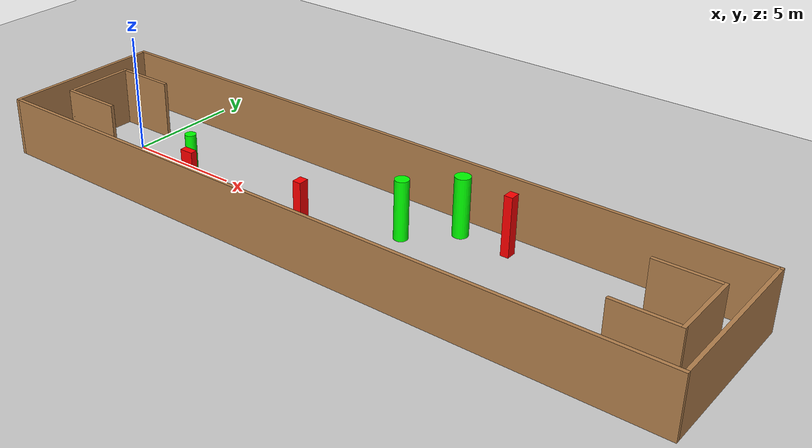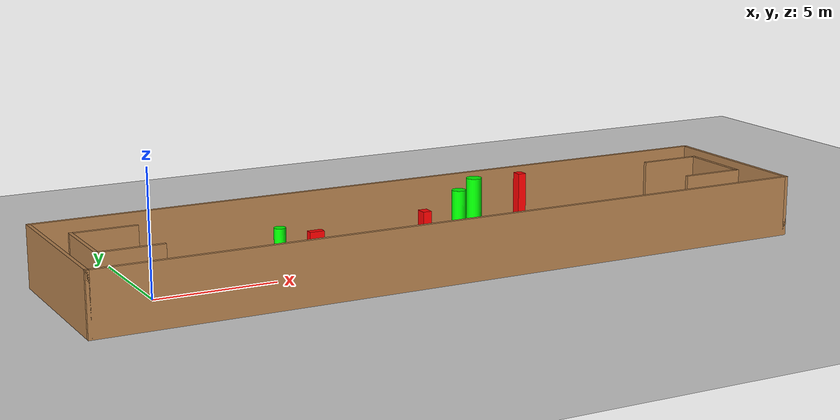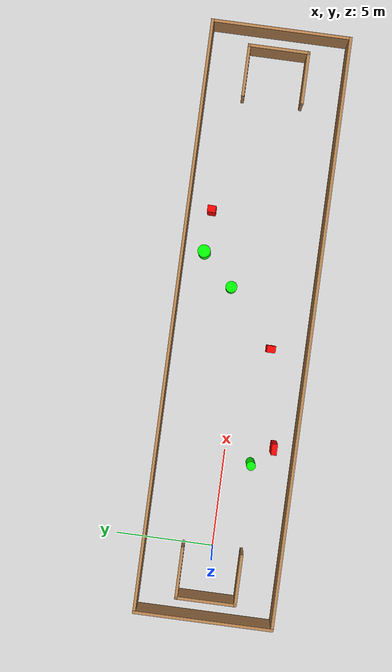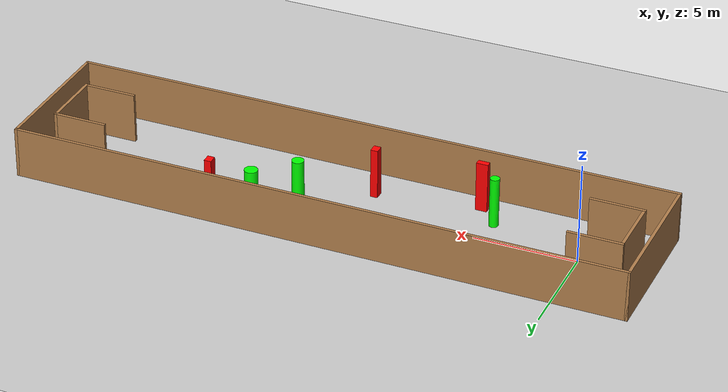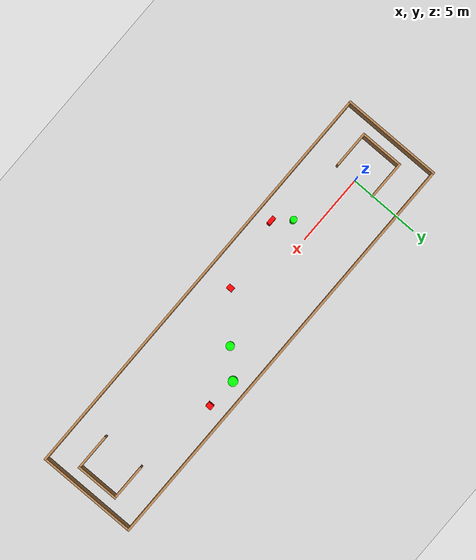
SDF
<sdf version="1.7">
 <world name="default">
  <light name="sun" type="directional">
   <pose>0 0 10 0 -0 0</pose>
   <diffuse>0.8 0.8 0.8 1</diffuse>
   <specular>0.2 0.2 0.2 1</specular>
   <attenuation>
    <range>1000</range>
    <constant>0.9</constant>
    <linear>0.01</linear>
    <quadratic>0.001</quadratic>
   </attenuation>
   <direction>-0.5 0.1 -0.9</direction>
   <spot><inner_angle>0</inner_angle><outer_angle>0</outer_angle><falloff>0</falloff></spot>
  </light>
  <model name="ground_plane">
   <static>1</static>
   <link name="link">
    <collision name="collision">
     <geometry><plane><normal>0 0 1</normal><size>100 100</size></plane></geometry>
     <surface>
      <contact><collide_bitmask>65535</collide_bitmask></contact>
      <friction><ode><mu>100</mu><mu2>50</mu2></ode></friction>
     </surface>
    </collision>
    <visual name="visual">
     <cast_shadows>0</cast_shadows>
     <geometry><plane><normal>0 0 1</normal><size>100 100</size></plane></geometry>
     <material>
      <script><uri>file://media/materials/scripts/gazebo.material</uri><name>Gazebo/Grey</name></script>
     </material>
    </visual>
   </link>
  </model>
  <gravity>0 0 -9.8</gravity>
  <magnetic_field>6e-06 2.3e-05 -4.2e-05</magnetic_field>
  <atmosphere type="adiabatic"/>
  <physics type="ode">
   <max_step_size>0.001</max_step_size>
   <real_time_factor>1</real_time_factor>
   <real_time_update_rate>1000</real_time_update_rate>
  </physics>
  <scene><ambient>0.4 0.4 0.4 1</ambient><background>0.7 0.7 0.7 1</background><shadows>1</shadows></scene>
  <spherical_coordinates>
   <surface_model>EARTH_WGS84</surface_model>
   <latitude_deg>0</latitude_deg>
   <longitude_deg>0</longitude_deg>
   <elevation>0</elevation>
   <heading_deg>0</heading_deg>
  </spherical_coordinates>
  <model name="my_base_walls">
   <link name="Wall_0">
    <collision name="Wall_0_Collision">
     <geometry><box><size>7.15 0.15 2.5</size></box></geometry>
     <pose>0 0 1.25 0 -0 0</pose>
    </collision>
    <visual name="Wall_0_Visual">
     <pose>0 0 1.25 0 -0 0</pose>
     <geometry><box><size>7.15 0.15 2.5</size></box></geometry>
     <material>
      <script><uri>file://media/materials/scripts/gazebo.material</uri><name>Gazebo/Wood</name></script>
      <ambient>1 1 1 1</ambient>
     </material>
     <meta><layer>0</layer></meta>
    </visual>
    <pose>-15 0 0 0 -0 1.5708</pose>
   </link>
   <link name="Wall_10">
    <collision name="Wall_10_Collision">
     <geometry><box><size>2.65 0.15 2.5</size></box></geometry>
     <pose>0 0 1.25 0 -0 0</pose>
    </collision>
    <visual name="Wall_10_Visual">
     <pose>0 0 1.25 0 -0 0</pose>
     <geometry><box><size>2.65 0.15 2.5</size></box></geometry>
     <material>
      <script><uri>file://media/materials/scripts/gazebo.material</uri><name>Gazebo/Wood</name></script>
      <ambient>1 1 1 1</ambient>
     </material>
     <meta><layer>0</layer></meta>
    </visual>
    <pose>-12.75 -1.5 0 0 -0 0</pose>
   </link>
   <link name="Wall_12">
    <collision name="Wall_12_Collision">
     <geometry><box><size>2.65 0.15 2.5</size></box></geometry>
     <pose>0 0 1.25 0 -0 0</pose>
    </collision>
    <visual name="Wall_12_Visual">
     <pose>0 0 1.25 0 -0 0</pose>
     <geometry><box><size>2.65 0.15 2.5</size></box></geometry>
     <material>
      <script><uri>file://media/materials/scripts/gazebo.material</uri><name>Gazebo/Wood</name></script>
      <ambient>1 1 1 1</ambient>
     </material>
     <meta><layer>0</layer></meta>
    </visual>
    <pose>-12.75 1.5 0 0 -0 0</pose>
   </link>
   <link name="Wall_14">
    <collision name="Wall_14_Collision">
     <geometry><box><size>3.15 0.15 2.5</size></box></geometry>
     <pose>0 0 1.25 0 -0 0</pose>
    </collision>
    <visual name="Wall_14_Visual">
     <pose>0 0 1.25 0 -0 0</pose>
     <geometry><box><size>3.15 0.15 2.5</size></box></geometry>
     <material>
      <script><uri>file://media/materials/scripts/gazebo.material</uri><name>Gazebo/Wood</name></script>
      <ambient>1 1 1 1</ambient>
     </material>
     <meta><layer>0</layer></meta>
    </visual>
    <pose>14 0 0 0 -0 -1.5708</pose>
   </link>
   <link name="Wall_15">
    <collision name="Wall_15_Collision">
     <geometry><box><size>2.65 0.15 2.5</size></box></geometry>
     <pose>0 0 1.25 0 -0 0</pose>
    </collision>
    <visual name="Wall_15_Visual">
     <pose>0 0 1.25 0 -0 0</pose>
     <geometry><box><size>2.65 0.15 2.5</size></box></geometry>
     <material>
      <script><uri>file://media/materials/scripts/gazebo.material</uri><name>Gazebo/Wood</name></script>
      <ambient>1 1 1 1</ambient>
     </material>
     <meta><layer>0</layer></meta>
    </visual>
    <pose>12.75 -1.5 0 0 -0 3.14159</pose>
   </link>
   <link name="Wall_17">
    <collision name="Wall_17_Collision">
     <geometry><box><size>2.65 0.15 2.5</size></box></geometry>
     <pose>0 0 1.25 0 -0 0</pose>
    </collision>
    <visual name="Wall_17_Visual">
     <pose>0 0 1.25 0 -0 0</pose>
     <geometry><box><size>2.65 0.15 2.5</size></box></geometry>
     <material>
      <script><uri>file://media/materials/scripts/gazebo.material</uri><name>Gazebo/Wood</name></script>
      <ambient>1 1 1 1</ambient>
     </material>
     <meta><layer>0</layer></meta>
    </visual>
    <pose>12.75 1.5 0 0 -0 3.14159</pose>
   </link>
   <link name="Wall_2">
    <collision name="Wall_2_Collision">
     <geometry><box><size>30.15 0.15 2.5</size></box></geometry>
     <pose>0 0 1.25 0 -0 0</pose>
    </collision>
    <visual name="Wall_2_Visual">
     <pose>0 0 1.25 0 -0 0</pose>
     <geometry><box><size>30.15 0.15 2.5</size></box></geometry>
     <material>
      <script><uri>file://media/materials/scripts/gazebo.material</uri><name>Gazebo/Wood</name></script>
      <ambient>1 1 1 1</ambient>
     </material>
     <meta><layer>0</layer></meta>
    </visual>
    <pose>-0 -3.5 0 0 -0 0</pose>
   </link>
   <link name="Wall_4">
    <collision name="Wall_4_Collision">
     <geometry><box><size>30.15 0.15 2.5</size></box></geometry>
     <pose>0 0 1.25 0 -0 0</pose>
    </collision>
    <visual name="Wall_4_Visual">
     <pose>0 0 1.25 0 -0 0</pose>
     <geometry><box><size>30.15 0.15 2.5</size></box></geometry>
     <material>
      <script><uri>file://media/materials/scripts/gazebo.material</uri><name>Gazebo/Wood</name></script>
      <ambient>1 1 1 1</ambient>
     </material>
     <meta><layer>0</layer></meta>
    </visual>
    <pose>-0 3.5 0 0 -0 0</pose>
   </link>
   <link name="Wall_6">
    <collision name="Wall_6_Collision">
     <geometry><box><size>7.15 0.15 2.5</size></box></geometry>
     <pose>0 0 1.25 0 -0 0</pose>
    </collision>
    <visual name="Wall_6_Visual">
     <pose>0 0 1.25 0 -0 0</pose>
     <geometry><box><size>7.15 0.15 2.5</size></box></geometry>
     <material>
      <script><uri>file://media/materials/scripts/gazebo.material</uri><name>Gazebo/Wood</name></script>
      <ambient>1 1 1 1</ambient>
     </material>
     <meta><layer>0</layer></meta>
    </visual>
    <pose>15 0 0 0 -0 -1.5708</pose>
   </link>
   <link name="Wall_9">
    <collision name="Wall_9_Collision">
     <geometry><box><size>3.15 0.15 2.5</size></box></geometry>
     <pose>0 0 1.25 0 -0 0</pose>
    </collision>
    <visual name="Wall_9_Visual">
     <pose>0 0 1.25 0 -0 0</pose>
     <geometry><box><size>3.15 0.15 2.5</size></box></geometry>
     <material>
      <script><uri>file://media/materials/scripts/gazebo.material</uri><name>Gazebo/Wood</name></script>
      <ambient>1 1 1 1</ambient>
     </material>
     <meta><layer>0</layer></meta>
    </visual>
    <pose>-14 0 0 0 -0 -1.5708</pose>
   </link>
   <static>1</static>
   <pose>11.5 0 0 0 -0 0</pose>
  </model>
  <model name="cylinder1">
   <static>1</static>
   <link name="link">
    <inertial>
     <mass>1</mass>
     <inertia><ixx>0.5</ixx><ixy>0</ixy><ixz>0</ixz><iyy>0.5</iyy><iyz>0</iyz><izz>1</izz></inertia>
    </inertial>
    <collision name="collision">
     <geometry><cylinder><radius>0.22762887819666555</radius><length>2.5</length></cylinder></geometry>
    </collision>
    <visual name="visual">
     <geometry><cylinder><radius>0.22762887819666555</radius><length>2.5</length></cylinder></geometry>
     <material>
      <ambient>0 1 0 1</ambient>
      <diffuse>0 1 0 1</diffuse>
      <specular>0.1 0.1 0.1 1</specular>
      <emissive>0 0 0 0</emissive>
     </material>
    </visual>
   </link>
   <pose>4.552105461198487 -1.3696910162479847 1.25 0 0 0</pose>
  </model>
  <model name="cylinder2">
   <static>1</static>
   <link name="link">
    <inertial>
     <mass>1</mass>
     <inertia><ixx>0.5</ixx><ixy>0</ixy><ixz>0</ixz><iyy>0.5</iyy><iyz>0</iyz><izz>1</izz></inertia>
    </inertial>
    <collision name="collision">
     <geometry><cylinder><radius>0.3235485724826168</radius><length>2.5</length></cylinder></geometry>
    </collision>
    <visual name="visual">
     <geometry><cylinder><radius>0.3235485724826168</radius><length>2.5</length></cylinder></geometry>
     <material>
      <ambient>0 1 0 1</ambient>
      <diffuse>0 1 0 1</diffuse>
      <specular>0.1 0.1 0.1 1</specular>
      <emissive>0 0 0 0</emissive>
     </material>
    </visual>
   </link>
   <pose>14.952613002726249 2.3987139559041415 1.25 0 0 0</pose>
  </model>
  <model name="cylinder3">
   <static>1</static>
   <link name="link">
    <inertial>
     <mass>1</mass>
     <inertia><ixx>0.5</ixx><ixy>0</ixy><ixz>0</ixz><iyy>0.5</iyy><iyz>0</iyz><izz>1</izz></inertia>
    </inertial>
    <collision name="collision">
     <geometry><cylinder><radius>0.2905452107334655</radius><length>2.5</length></cylinder></geometry>
    </collision>
    <visual name="visual">
     <geometry><cylinder><radius>0.2905452107334655</radius><length>2.5</length></cylinder></geometry>
     <material>
      <ambient>0 1 0 1</ambient>
      <diffuse>0 1 0 1</diffuse>
      <specular>0.1 0.1 0.1 1</specular>
      <emissive>0 0 0 0</emissive>
     </material>
    </visual>
   </link>
   <pose>13.34668325086507 0.7986968848742206 1.25 0 0 0</pose>
  </model>
  <model name="box1">
   <static>1</static>
   <link name="link">
    <inertial>
     <mass>1</mass>
     <inertia><ixx>0.083</ixx><ixy>0</ixy><ixz>0</ixz><iyy>0.083</iyy><iyz>0</iyz><izz>0.083</izz></inertia>
    </inertial>
    <collision name="collision">
     <geometry><box><size>0.3544449623405716 0.43508410586755275 2.5</size></box></geometry>
    </collision>
    <visual name="visual">
     <geometry><box><size>0.3544449623405716 0.43508410586755275 2.5</size></box></geometry>
     <material>
      <ambient>1 0 0 1</ambient>
      <diffuse>1 0 0 1</diffuse>
      <specular>0.1 0.1 0.1 1</specular>
      <emissive>0 0 0 0</emissive>
     </material>
    </visual>
    <sensor name="my_contact" type="contact">
     <contact><collision>box_collision</collision><topic>__default_topic__</topic></contact>
    </sensor>
   </link>
   <pose>10.502308618043603 -1.605864112123079 1.25 0 0 0</pose>
  </model>
  <model name="box2">
   <static>1</static>
   <link name="link">
    <inertial>
     <mass>1</mass>
     <inertia><ixx>0.083</ixx><ixy>0</ixy><ixz>0</ixz><iyy>0.083</iyy><iyz>0</iyz><izz>0.083</izz></inertia>
    </inertial>
    <collision name="collision">
     <geometry><box><size>0.5699747830355033 0.28207673792476307 2.5</size></box></geometry>
    </collision>
    <visual name="visual">
     <geometry><box><size>0.5699747830355033 0.28207673792476307 2.5</size></box></geometry>
     <material>
      <ambient>1 0 0 1</ambient>
      <diffuse>1 0 0 1</diffuse>
      <specular>0.1 0.1 0.1 1</specular>
      <emissive>0 0 0 0</emissive>
     </material>
    </visual>
    <sensor name="my_contact" type="contact">
     <contact><collision>box_collision</collision><topic>__default_topic__</topic></contact>
    </sensor>
   </link>
   <pose>5.527195054964839 -2.4200722922052496 1.25 0 0 0</pose>
  </model>
  <model name="box3">
   <static>1</static>
   <link name="link">
    <inertial>
     <mass>1</mass>
     <inertia><ixx>0.083</ixx><ixy>0</ixy><ixz>0</ixz><iyy>0.083</iyy><iyz>0</iyz><izz>0.083</izz></inertia>
    </inertial>
    <collision name="collision">
     <geometry><box><size>0.3487263434329261 0.42628245299893675 2.5</size></box></geometry>
    </collision>
    <visual name="visual">
     <geometry><box><size>0.3487263434329261 0.42628245299893675 2.5</size></box></geometry>
     <material>
      <ambient>1 0 0 1</ambient>
      <diffuse>1 0 0 1</diffuse>
      <specular>0.1 0.1 0.1 1</specular>
      <emissive>0 0 0 0</emissive>
     </material>
    </visual>
    <sensor name="my_contact" type="contact">
     <contact><collision>box_collision</collision><topic>__default_topic__</topic></contact>
    </sensor>
   </link>
   <pose>17.104610282934686 2.297128411267874 1.25 0 0 0</pose>
  </model>
 </world>
</sdf>
